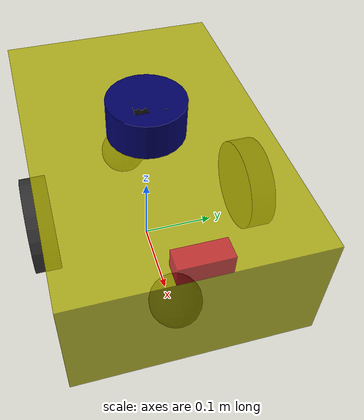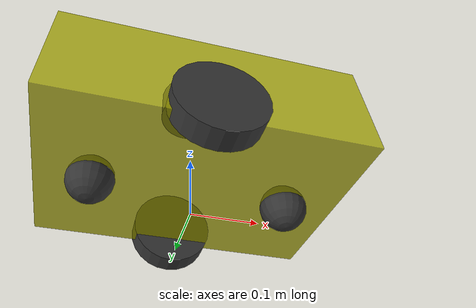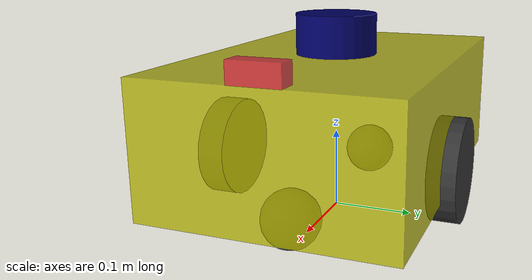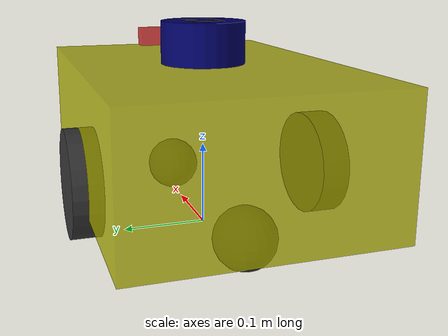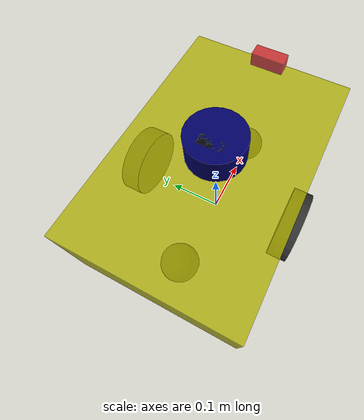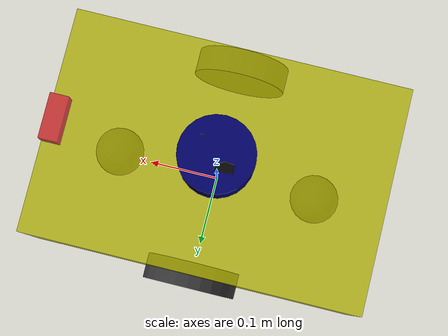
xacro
<robot name="car" xmlns:xacro="http://wiki.ros.org/xacro">
    <xacro:include filename="car_base.urdf.xacro"/>
    <xacro:include filename="car_camera.urdf.xacro"/>
    <xacro:include filename="car_laser.urdf.xacro"/>
    <xacro:include filename="car_imu.urdf.xacro"/>

    <!-- 运动控制插件 -->
    <gazebo>
        <plugin
            filename="gz-sim-diff-drive-system"
            name="gz::sim::systems::DiffDrive">
            <left_joint>left_front_wheel_joint</left_joint>
            <right_joint>right_front_wheel_joint</right_joint>
            <wheel_separation>0.30</wheel_separation>
            <wheel_radius>0.065</wheel_radius>
            <odom_publish_frequency>50</odom_publish_frequency>
            <frame_id>odom</frame_id>
            <child_frame_id>base_footprint</child_frame_id>
            <publish_wheel_tf>true</publish_wheel_tf>
            <max_linear_acceleration>0.35</max_linear_acceleration>
            <min_linear_acceleration>-0.35</min_linear_acceleration>
            <max_angular_acceleration>0.8</max_angular_acceleration>
            <min_angular_acceleration>-0.8</min_angular_acceleration>
            <max_linear_velocity>0.35</max_linear_velocity>
            <min_linear_velocity>-0.35</min_linear_velocity>
            <max_angular_velocity>0.8</max_angular_velocity>
            <min_angular_velocity>-0.8</min_angular_velocity>
        </plugin>
    </gazebo>

    <!-- 关节状态发布 -->
    <gazebo>
        <plugin filename="gz-sim-joint-state-publisher-system"
        name="gz::sim::systems::JointStatePublisher">
        </plugin>
    </gazebo>

</robot>

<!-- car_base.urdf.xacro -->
<robot xmlns:xacro="http://wiki.ros.org/xacro">
    <xacro:include filename="$(find robot)/urdf/common_inertia.xacro" />
    <!-- PI 值 -->
    <xacro:property name="PI" value="3.1416"/>
    <!-- 定义车辆参数 -->
    <!-- 车体长宽高 -->
    <xacro:property name="base_link_x" value="0.45"/>
    <xacro:property name="base_link_y" value="0.30"/>
    <xacro:property name="base_link_z" value="0.16"/>
    <!-- 离地间距 -->
    <xacro:property name="distance" value="0.04"/>
    <!-- 车轮半径 宽度 -->
    <xacro:property name="wheel_radius" value="0.065"/>
    <xacro:property name="wheel_length" value="0.035"/>

    <!-- 定义颜色 -->
    <material name="yellow">
        <color rgba="0.7 0.7 0 0.8" />
    </material>
    <material name="red">
        <color rgba="0.8 0.1 0.1 0.8" />
    </material>
    <material name="gray">
        <color rgba="0.2 0.2 0.2 0.95" />
      </material>
    <!-- 定义 base_footprint -->
    <link name="base_footprint">
        <visual>
            <geometry>
                <sphere radius="0.001"/>
            </geometry>
        </visual>
    </link>

    <!-- 定义 base_link -->
    <link name="base_link">
        <visual>
            <!-- 形状 -->
            <geometry>
                <box size="${base_link_x} ${base_link_y} ${base_link_z}" />
            </geometry>
            <origin xyz="0 0 0" rpy="0 0 0" />
            <material name="yellow"/>
        </visual>
        <collision>
            <!-- 形状 -->
            <geometry>
                <box size="${base_link_x} ${base_link_y} ${base_link_z}" />
            </geometry>
            <origin xyz="0 0 0" rpy="0 0 0" />
            <material name="yellow"/>
        </collision>
        <xacro:box_inertia m="5.0" w="${base_link_x}" d="${base_link_y}" h="${base_link_z}"/>
    </link>
    <joint name="baselink2basefootprint" type="fixed">
        <parent link="base_footprint"/>
        <child link="base_link"/>
        <origin xyz="0.0 0.0 ${distance + base_link_z / 2}"/>
    </joint>
    <!-- 车轮宏定义 -->
    <xacro:macro name="wheel_func" params="wheel_name is_front is_left" >
        <link name="${wheel_name}_wheel">
            <visual>
                <geometry>
                    <cylinder radius="${wheel_radius}" length="${wheel_length}" />
                </geometry>
                <origin xyz="0 0 0" rpy="${PI / 2} 0 0" />
                <material name="gray"/>
            </visual>
            <collision>
                 <geometry>
                    <cylinder radius="${wheel_radius}" length="${wheel_length}" />
                </geometry>
                <origin xyz="0 0 0" rpy="${PI / 2} 0 0" />
                <material name="gray"/>
            </collision>
            <xacro:cylinder_inertia m="0.15" r="${wheel_radius}" h="${wheel_length}"/>
        </link>
        <joint name="${wheel_name}_wheel_joint" type="continuous">
            <parent link="base_link"  />
            <child link="${wheel_name}_wheel" />
            <origin xyz="${(base_link_x / 2 - wheel_radius) * is_front} ${base_link_y / 2 * is_left} ${(base_link_z / 2 + distance - wheel_radius) * -1}" rpy="0 0 0" />
            <axis xyz="0 1 0" />
            <dynamics damping="0.08" friction="0.01" />
        </joint>
    </xacro:macro>
    <xacro:macro name="wheel_friction" params="wheel_name">
        <gazebo reference="${wheel_name}_wheel">
            <mu1>1.0</mu1>
            <mu2>0.25</mu2>
            <kp>1000000.0</kp>
            <kd>10.0</kd>
        </gazebo>
    </xacro:macro>

    <xacro:macro name="caster_func" params="caster_name is_front">
        <link name="${caster_name}_caster">
            <visual>
                <geometry>
                    <sphere radius="0.035" />
                </geometry>
                <material name="gray" />
            </visual>
            <collision>
                <geometry>
                    <sphere radius="0.035" />
                </geometry>
            </collision>
            <xacro:sphere_inertia m="0.05" r="0.035" />
        </link>
        <joint name="${caster_name}_caster_joint" type="fixed">
            <parent link="base_link" />
            <child link="${caster_name}_caster" />
            <origin xyz="${(base_link_x / 2 - 0.08) * is_front} 0 ${(base_link_z / 2 + distance - 0.035) * -1}" rpy="0 0 0" />
        </joint>
        <gazebo reference="${caster_name}_caster">
            <mu1>0.05</mu1>
            <mu2>0.05</mu2>
            <kp>1000000.0</kp>
            <kd>10.0</kd>
        </gazebo>
    </xacro:macro>

    <!-- Two centered drive wheels plus low-friction front/rear supports. -->
    <xacro:wheel_func wheel_name="left_front" is_front="0" is_left="1" />
    <xacro:wheel_func wheel_name="right_front" is_front="0" is_left="-1" />
    <xacro:wheel_friction wheel_name="left_front" />
    <xacro:wheel_friction wheel_name="right_front" />
    <xacro:caster_func caster_name="front" is_front="1" />
    <xacro:caster_func caster_name="rear" is_front="-1" />
</robot>

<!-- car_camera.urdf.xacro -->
<!-- 摄像头相关的 xacro 文件 -->
<robot xmlns:xacro="http://wiki.ros.org/xacro">
    <!-- 摄像头属性 -->
    <xacro:property name="camera_x" value="0.025" /> <!-- 摄像头长度(x) -->
    <xacro:property name="camera_y" value="0.06" /> <!-- 摄像头宽度(y) -->
    <xacro:property name="camera_z" value="0.025" /> <!-- 摄像头高度(z) -->
    <xacro:property name="camera_joint_x" value="${base_link_x / 2 - camera_x / 2}" /> <!-- 摄像头安装的x坐标 -->
    <xacro:property name="camera_joint_y" value="0.0" /> <!-- 摄像头安装的y坐标 -->
    <xacro:property name="camera_joint_z" value="${base_link_z / 2 + camera_z / 2}" /> <!-- 摄像头安装的z坐标:底盘高度 / 2 + 摄像头高度 / 2  -->

    <!-- 摄像头关节以及link -->
    <link name="camera">
        <visual>
            <geometry>
                <box size="${camera_x} ${camera_y} ${camera_z}" />
            </geometry>
            <origin xyz="0.0 0.0 0.0" rpy="0.0 0.0 0.0" />
            <material name="red" />
        </visual>
    </link>

    <joint name="camera2baselink" type="fixed">
        <parent link="base_link" />
        <child link="camera" />
        <origin xyz="${camera_joint_x} ${camera_joint_y} ${camera_joint_z}" />
    </joint>
</robot>

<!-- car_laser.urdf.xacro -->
<!--
    小车底盘添加雷达
-->
<robot xmlns:xacro="http://wiki.ros.org/xacro">

    <material name="blue">
        <color rgba="0.0 0.0 0.4 0.95" />
    </material>

    <!-- 雷达属性 -->
    <xacro:property name="laser_length" value="0.05" /> <!-- 雷达长度 -->
    <xacro:property name="laser_radius" value="0.05" /> <!-- 雷达半径 -->
    <xacro:property name="laser_joint_x" value="0.0" /> <!-- 雷达安装的x坐标 -->
    <xacro:property name="laser_joint_y" value="0.0" /> <!-- 雷达安装的y坐标 -->
    <xacro:property name="laser_joint_z" value="${base_link_z / 2 + laser_length / 2}" /> <!-- 雷达安装的z坐标:车体高度 / 2 + 雷达高度 / 2  -->

    <!-- 雷达关节以及link -->
    <link name="laser">
        <visual>
            <geometry>
                <cylinder radius="${laser_radius}" length="${laser_length}" />
            </geometry>
            <origin xyz="0.0 0.0 0.0" rpy="0.0 0.0 0.0" />
            <material name="blue" />
        </visual>
    </link>

    <joint name="laser2baselink" type="fixed">
        <parent link="base_link" />
        <child link="laser" />
        <origin xyz="${laser_joint_x} ${laser_joint_y} ${laser_joint_z}" />
    </joint>

    <gazebo reference="laser">
        <sensor name="laser_sensor" type="gpu_lidar">
            <topic>/scan</topic>
            <update_rate>10</update_rate>
            <ray>
                <scan>
                    <horizontal>
                        <samples>360</samples>
                        <resolution>1</resolution>
                        <min_angle>-${PI}</min_angle>
                        <max_angle>${PI}</max_angle>
                    </horizontal>
                </scan>
                <range>
                    <min>0.12</min>
                    <max>8.0</max>
                    <resolution>0.01</resolution>
                </range>
                <noise>
                    <type>gaussian</type>
                    <mean>0.0</mean>
                    <stddev>0.01</stddev>
                </noise>
            </ray>
            <always_on>true</always_on>
            <visualize>true</visualize>
        </sensor>
        <sensor name="point_lidar" type="gpu_lidar">
            <topic>/points</topic>
            <update_rate>10</update_rate>
            <ray>
                <scan>
                    <horizontal>
                        <samples>720</samples>
                        <resolution>1</resolution>
                        <min_angle>-${PI}</min_angle>
                        <max_angle>${PI}</max_angle>
                    </horizontal>
                    <vertical>
                        <samples>16</samples>
                        <resolution>1</resolution>
                        <min_angle>-0.261799</min_angle>
                        <max_angle>0.261799</max_angle>
                    </vertical>
                </scan>
                <range>
                    <min>0.2</min>
                    <max>20.0</max>
                    <resolution>0.02</resolution>
                </range>
                <noise>
                    <type>gaussian</type>
                    <mean>0.0</mean>
                    <stddev>0.01</stddev>
                </noise>
            </ray>
            <always_on>true</always_on>
            <visualize>true</visualize>
        </sensor>
    </gazebo>
</robot>

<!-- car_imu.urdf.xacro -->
<robot xmlns:xacro="http://wiki.ros.org/xacro">
    <material name="black">
        <color rgba="0.02 0.02 0.02 1.0" />
    </material>

    <link name="imu_link">
        <visual>
            <geometry>
                <box size="0.05 0.04 0.02" />
            </geometry>
            <origin xyz="0 0 0" rpy="0 0 0" />
            <material name="black" />
        </visual>
        <collision>
            <geometry>
                <box size="0.05 0.04 0.02" />
            </geometry>
            <origin xyz="0 0 0" rpy="0 0 0" />
        </collision>
        <xacro:box_inertia m="0.02" w="0.05" d="0.04" h="0.02" />
    </link>

    <joint name="imu2baselink" type="fixed">
        <parent link="base_link" />
        <child link="imu_link" />
        <origin xyz="0 0 0.12" rpy="0 0 0" />
    </joint>

    <gazebo reference="imu_link">
        <sensor name="imu_sensor" type="imu">
            <topic>/imu</topic>
            <update_rate>200</update_rate>
            <always_on>true</always_on>
        </sensor>
    </gazebo>
</robot>
